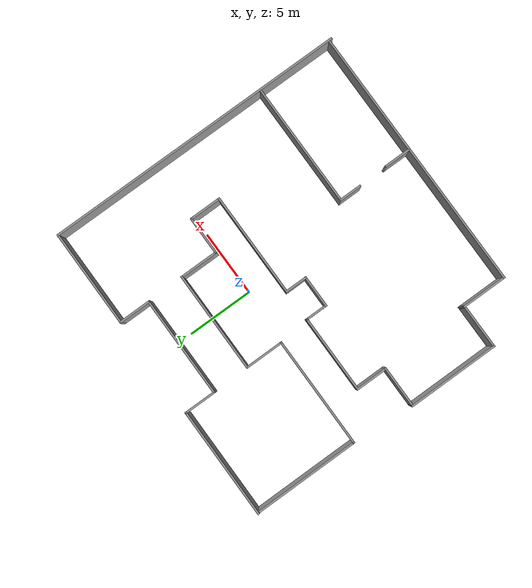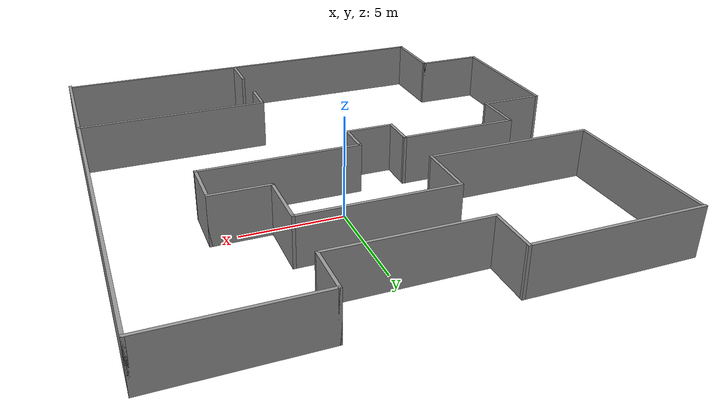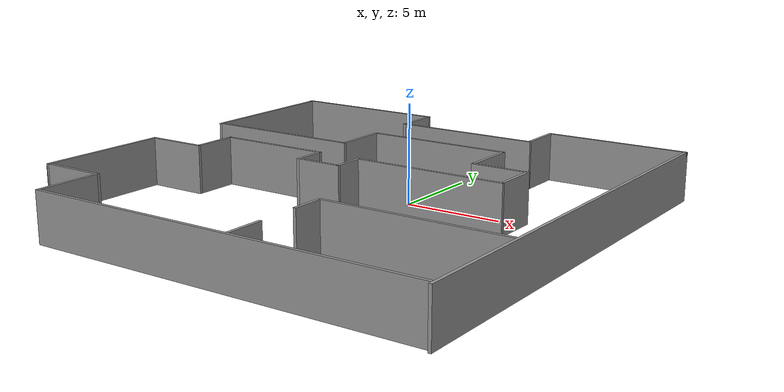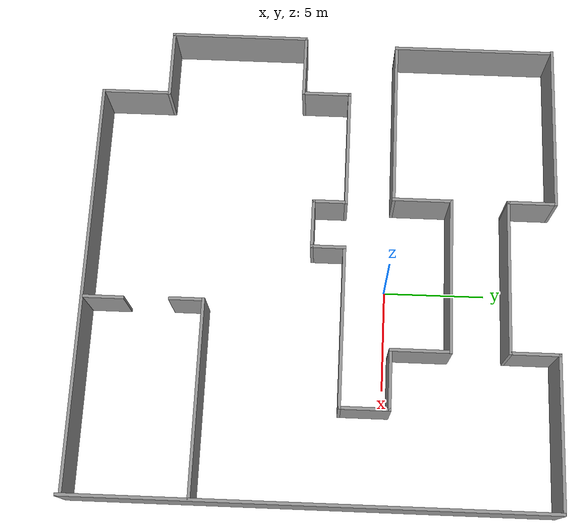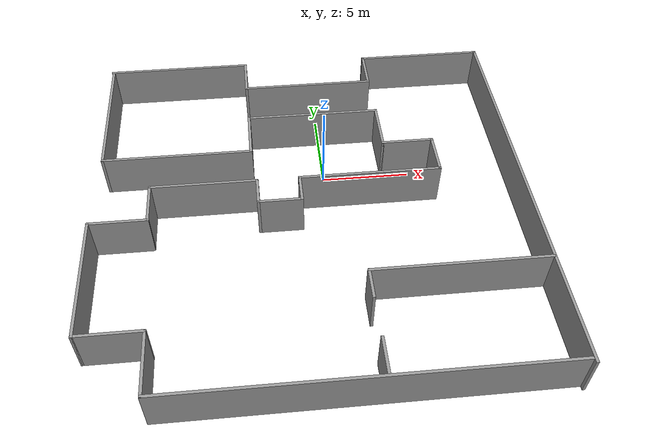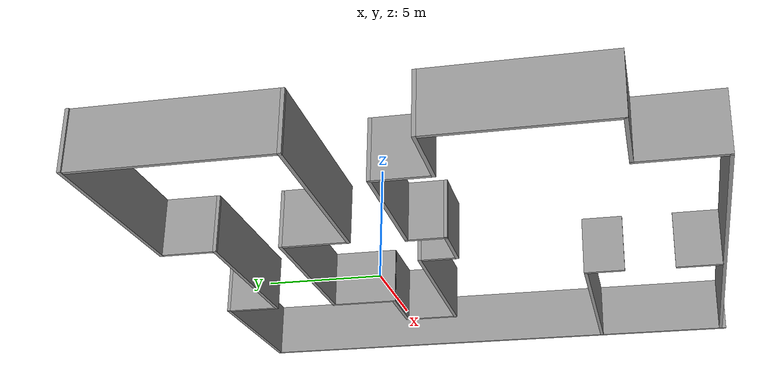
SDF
<?xml version='1.0'?>
<sdf version='1.7'>
  <model name='test1'>
    <pose>-1.06273 -3.27495 0 0 -0 0</pose>
    <link name='Wall_10'>
      <collision name='Wall_10_Collision'>
        <geometry>
          <box>
            <size>3 0.15 2.5</size>
          </box>
        </geometry>
        <pose>0 0 1.25 0 -0 0</pose>
      </collision>
      <visual name='Wall_10_Visual'>
        <pose>0 0 1.25 0 -0 0</pose>
        <geometry>
          <box>
            <size>3 0.15 2.5</size>
          </box>
        </geometry>
        <material>
          <script>
            <uri>file://media/materials/scripts/gazebo.material</uri>
            <name>Gazebo/Grey</name>
          </script>
          <ambient>1 1 1 1</ambient>
        </material>
        <meta>
          <layer>0</layer>
        </meta>
      </visual>
      <pose>4.49826 4.96085 0 0 -0 -1.5708</pose>
    </link>
    <link name='Wall_11'>
      <collision name='Wall_11_Collision'>
        <geometry>
          <box>
            <size>3 0.15 2.5</size>
          </box>
        </geometry>
        <pose>0 0 1.25 0 -0 0</pose>
      </collision>
      <visual name='Wall_11_Visual'>
        <pose>0 0 1.25 0 -0 0</pose>
        <geometry>
          <box>
            <size>3 0.15 2.5</size>
          </box>
        </geometry>
        <material>
          <script>
            <uri>file://media/materials/scripts/gazebo.material</uri>
            <name>Gazebo/Grey</name>
          </script>
          <ambient>1 1 1 1</ambient>
        </material>
        <meta>
          <layer>0</layer>
        </meta>
      </visual>
      <pose>5.92326 3.53585 0 0 -0 0</pose>
    </link>
    <link name='Wall_12'>
      <collision name='Wall_12_Collision'>
        <geometry>
          <box>
            <size>2.5 0.15 2.5</size>
          </box>
        </geometry>
        <pose>0 0 1.25 0 -0 0</pose>
      </collision>
      <visual name='Wall_12_Visual'>
        <pose>0 0 1.25 0 -0 0</pose>
        <geometry>
          <box>
            <size>2.5 0.15 2.5</size>
          </box>
        </geometry>
        <material>
          <script>
            <uri>file://media/materials/scripts/gazebo.material</uri>
            <name>Gazebo/Grey</name>
          </script>
          <ambient>1 1 1 1</ambient>
        </material>
        <meta>
          <layer>0</layer>
        </meta>
      </visual>
      <pose>7.34826 2.36085 0 0 -0 -1.5708</pose>
    </link>
    <link name='Wall_13'>
      <collision name='Wall_13_Collision'>
        <geometry>
          <box>
            <size>8 0.15 2.5</size>
          </box>
        </geometry>
        <pose>0 0 1.25 0 -0 0</pose>
      </collision>
      <visual name='Wall_13_Visual'>
        <pose>0 0 1.25 0 -0 0</pose>
        <geometry>
          <box>
            <size>8 0.15 2.5</size>
          </box>
        </geometry>
        <material>
          <script>
            <uri>file://media/materials/scripts/gazebo.material</uri>
            <name>Gazebo/Grey</name>
          </script>
          <ambient>1 1 1 1</ambient>
        </material>
        <meta>
          <layer>0</layer>
        </meta>
      </visual>
      <pose>3.42326 1.18585 0 0 -0 3.14159</pose>
    </link>
    <link name='Wall_14'>
      <collision name='Wall_14_Collision'>
        <geometry>
          <box>
            <size>1.75 0.15 2.5</size>
          </box>
        </geometry>
        <pose>0 0 1.25 0 -0 0</pose>
      </collision>
      <visual name='Wall_14_Visual'>
        <pose>0 0 1.25 0 -0 0</pose>
        <geometry>
          <box>
            <size>1.75 0.15 2.5</size>
          </box>
        </geometry>
        <material>
          <script>
            <uri>file://media/materials/scripts/gazebo.material</uri>
            <name>Gazebo/Grey</name>
          </script>
          <ambient>1 1 1 1</ambient>
        </material>
        <meta>
          <layer>0</layer>
        </meta>
      </visual>
      <pose>-0.501739 0.385846 0 0 -0 -1.5708</pose>
    </link>
    <link name='Wall_15'>
      <collision name='Wall_15_Collision'>
        <geometry>
          <box>
            <size>2.5 0.15 2.5</size>
          </box>
        </geometry>
        <pose>0 0 1.25 0 -0 0</pose>
      </collision>
      <visual name='Wall_15_Visual'>
        <pose>0 0 1.25 0 -0 0</pose>
        <geometry>
          <box>
            <size>2.5 0.15 2.5</size>
          </box>
        </geometry>
        <material>
          <script>
            <uri>file://media/materials/scripts/gazebo.material</uri>
            <name>Gazebo/Grey</name>
          </script>
          <ambient>1 1 1 1</ambient>
        </material>
        <meta>
          <layer>0</layer>
        </meta>
      </visual>
      <pose>-1.67674 -0.414155 0 0 -0 3.14159</pose>
    </link>
    <link name='Wall_16'>
      <collision name='Wall_16_Collision'>
        <geometry>
          <box>
            <size>1.75 0.15 2.5</size>
          </box>
        </geometry>
        <pose>0 0 1.25 0 -0 0</pose>
      </collision>
      <visual name='Wall_16_Visual'>
        <pose>0 0 1.25 0 -0 0</pose>
        <geometry>
          <box>
            <size>1.75 0.15 2.5</size>
          </box>
        </geometry>
        <material>
          <script>
            <uri>file://media/materials/scripts/gazebo.material</uri>
            <name>Gazebo/Grey</name>
          </script>
          <ambient>1 1 1 1</ambient>
        </material>
        <meta>
          <layer>0</layer>
        </meta>
      </visual>
      <pose>-2.85174 0.385846 0 0 -0 1.5708</pose>
    </link>
    <link name='Wall_17'>
      <collision name='Wall_17_Collision'>
        <geometry>
          <box>
            <size>6 0.15 2.5</size>
          </box>
        </geometry>
        <pose>0 0 1.25 0 -0 0</pose>
      </collision>
      <visual name='Wall_17_Visual'>
        <pose>0 0 1.25 0 -0 0</pose>
        <geometry>
          <box>
            <size>6 0.15 2.5</size>
          </box>
        </geometry>
        <material>
          <script>
            <uri>file://media/materials/scripts/gazebo.material</uri>
            <name>Gazebo/Grey</name>
          </script>
          <ambient>1 1 1 1</ambient>
        </material>
        <meta>
          <layer>0</layer>
        </meta>
      </visual>
      <pose>-5.77674 1.18585 0 0 -0 3.14159</pose>
    </link>
    <link name='Wall_18'>
      <collision name='Wall_18_Collision'>
        <geometry>
          <box>
            <size>2.5 0.15 2.5</size>
          </box>
        </geometry>
        <pose>0 0 1.25 0 -0 0</pose>
      </collision>
      <visual name='Wall_18_Visual'>
        <pose>0 0 1.25 0 -0 0</pose>
        <geometry>
          <box>
            <size>2.5 0.15 2.5</size>
          </box>
        </geometry>
        <material>
          <script>
            <uri>file://media/materials/scripts/gazebo.material</uri>
            <name>Gazebo/Grey</name>
          </script>
          <ambient>1 1 1 1</ambient>
        </material>
        <meta>
          <layer>0</layer>
        </meta>
      </visual>
      <pose>-8.70174 0.010846 0 0 -0 -1.5708</pose>
    </link>
    <link name='Wall_19'>
      <collision name='Wall_19_Collision'>
        <geometry>
          <box>
            <size>3.25 0.15 2.5</size>
          </box>
        </geometry>
        <pose>0 0 1.25 0 -0 0</pose>
      </collision>
      <visual name='Wall_19_Visual'>
        <pose>0 0 1.25 0 -0 0</pose>
        <geometry>
          <box>
            <size>3.25 0.15 2.5</size>
          </box>
        </geometry>
        <material>
          <script>
            <uri>file://media/materials/scripts/gazebo.material</uri>
            <name>Gazebo/Grey</name>
          </script>
          <ambient>1 1 1 1</ambient>
        </material>
        <meta>
          <layer>0</layer>
        </meta>
      </visual>
      <pose>-10.2517 -1.16416 0 0 -0 3.14159</pose>
    </link>
    <link name='Wall_20'>
      <collision name='Wall_20_Collision'>
        <geometry>
          <box>
            <size>7 0.15 2.5</size>
          </box>
        </geometry>
        <pose>0 0 1.25 0 -0 0</pose>
      </collision>
      <visual name='Wall_20_Visual'>
        <pose>0 0 1.25 0 -0 0</pose>
        <geometry>
          <box>
            <size>7 0.15 2.5</size>
          </box>
        </geometry>
        <material>
          <script>
            <uri>file://media/materials/scripts/gazebo.material</uri>
            <name>Gazebo/Grey</name>
          </script>
          <ambient>1 1 1 1</ambient>
        </material>
        <meta>
          <layer>0</layer>
        </meta>
      </visual>
      <pose>-11.8017 -4.58915 0 0 -0 -1.5708</pose>
    </link>
    <link name='Wall_21'>
      <collision name='Wall_21_Collision'>
        <geometry>
          <box>
            <size>3.5 0.15 2.5</size>
          </box>
        </geometry>
        <pose>0 0 1.25 0 -0 0</pose>
      </collision>
      <visual name='Wall_21_Visual'>
        <pose>0 0 1.25 0 -0 0</pose>
        <geometry>
          <box>
            <size>3.5 0.15 2.5</size>
          </box>
        </geometry>
        <material>
          <script>
            <uri>file://media/materials/scripts/gazebo.material</uri>
            <name>Gazebo/Grey</name>
          </script>
          <ambient>1 1 1 1</ambient>
        </material>
        <meta>
          <layer>0</layer>
        </meta>
      </visual>
      <pose>-10.1267 -8.01415 0 0 -0 0</pose>
    </link>
    <link name='Wall_22'>
      <collision name='Wall_22_Collision'>
        <geometry>
          <box>
            <size>3.5 0.15 2.5</size>
          </box>
        </geometry>
        <pose>0 0 1.25 0 -0 0</pose>
      </collision>
      <visual name='Wall_22_Visual'>
        <pose>0 0 1.25 0 -0 0</pose>
        <geometry>
          <box>
            <size>3.5 0.15 2.5</size>
          </box>
        </geometry>
        <material>
          <script>
            <uri>file://media/materials/scripts/gazebo.material</uri>
            <name>Gazebo/Grey</name>
          </script>
          <ambient>1 1 1 1</ambient>
        </material>
        <meta>
          <layer>0</layer>
        </meta>
      </visual>
      <pose>-8.45174 -9.68915 0 0 -0 -1.5708</pose>
    </link>
    <link name='Wall_23'>
      <collision name='Wall_23_Collision'>
        <geometry>
          <box>
            <size>20.25 0.15 2.5</size>
          </box>
        </geometry>
        <pose>0 0 1.25 0 -0 0</pose>
      </collision>
      <visual name='Wall_23_Visual'>
        <pose>0 0 1.25 0 -0 0</pose>
        <geometry>
          <box>
            <size>20.25 0.15 2.5</size>
          </box>
        </geometry>
        <material>
          <script>
            <uri>file://media/materials/scripts/gazebo.material</uri>
            <name>Gazebo/Grey</name>
          </script>
          <ambient>1 1 1 1</ambient>
        </material>
        <meta>
          <layer>0</layer>
        </meta>
      </visual>
      <pose>1.59826 -11.3642 0 0 -0 0</pose>
    </link>
    <link name='Wall_25'>
      <collision name='Wall_25_Collision'>
        <geometry>
          <box>
            <size>9.5 0.15 2.5</size>
          </box>
        </geometry>
        <pose>0 0 1.25 0 -0 0</pose>
      </collision>
      <visual name='Wall_25_Visual'>
        <pose>0 0 1.25 0 -0 0</pose>
        <geometry>
          <box>
            <size>9.5 0.15 2.5</size>
          </box>
        </geometry>
        <material>
          <script>
            <uri>file://media/materials/scripts/gazebo.material</uri>
            <name>Gazebo/Grey</name>
          </script>
          <ambient>1 1 1 1</ambient>
        </material>
        <meta>
          <layer>0</layer>
        </meta>
      </visual>
      <pose>7.06245 -5.50558 0 0 -0 3.14159</pose>
    </link>
    <link name='Wall_26'>
      <collision name='Wall_26_Collision'>
        <geometry>
          <box>
            <size>1.75 0.15 2.5</size>
          </box>
        </geometry>
        <pose>0 0 1.25 0 -0 0</pose>
      </collision>
      <visual name='Wall_26_Visual'>
        <pose>0 0 1.25 0 -0 0</pose>
        <geometry>
          <box>
            <size>1.75 0.15 2.5</size>
          </box>
        </geometry>
        <material>
          <script>
            <uri>file://media/materials/scripts/gazebo.material</uri>
            <name>Gazebo/Grey</name>
          </script>
          <ambient>1 1 1 1</ambient>
        </material>
        <meta>
          <layer>0</layer>
        </meta>
      </visual>
      <pose>2.38744 -6.30558 0 0 -0 -1.5708</pose>
    </link>
    <link name='Wall_29'>
      <collision name='Wall_29_Collision'>
        <geometry>
          <box>
            <size>2 0.15 2.5</size>
          </box>
        </geometry>
        <pose>0 0 1.25 0 -0 0</pose>
      </collision>
      <visual name='Wall_29_Visual'>
        <pose>0 0 1.25 0 -0 0</pose>
        <geometry>
          <box>
            <size>2 0.15 2.5</size>
          </box>
        </geometry>
        <material>
          <script>
            <uri>file://media/materials/scripts/gazebo.material</uri>
            <name>Gazebo/Grey</name>
          </script>
          <ambient>1 1 1 1</ambient>
        </material>
        <meta>
          <layer>0</layer>
        </meta>
      </visual>
      <pose>2.43834 -10.3295 0 0 -0 1.5708</pose>
    </link>
    <link name='Wall_31'>
      <collision name='Wall_31_Collision'>
        <geometry>
          <box>
            <size>7.75 0.15 2.5</size>
          </box>
        </geometry>
        <pose>0 0 1.25 0 -0 0</pose>
      </collision>
      <visual name='Wall_31_Visual'>
        <pose>0 0 1.25 0 -0 0</pose>
        <geometry>
          <box>
            <size>7.75 0.15 2.5</size>
          </box>
        </geometry>
        <material>
          <script>
            <uri>file://media/materials/scripts/gazebo.material</uri>
            <name>Gazebo/Grey</name>
          </script>
          <ambient>1 1 1 1</ambient>
        </material>
        <meta>
          <layer>0</layer>
        </meta>
      </visual>
      <pose>0.698261 6.38585 0 0 -0 3.14159</pose>
    </link>
    <link name='Wall_32'>
      <collision name='Wall_32_Collision'>
        <geometry>
          <box>
            <size>3 0.15 2.5</size>
          </box>
        </geometry>
        <pose>0 0 1.25 0 -0 0</pose>
      </collision>
      <visual name='Wall_32_Visual'>
        <pose>0 0 1.25 0 -0 0</pose>
        <geometry>
          <box>
            <size>3 0.15 2.5</size>
          </box>
        </geometry>
        <material>
          <script>
            <uri>file://media/materials/scripts/gazebo.material</uri>
            <name>Gazebo/Grey</name>
          </script>
          <ambient>1 1 1 1</ambient>
        </material>
        <meta>
          <layer>0</layer>
        </meta>
      </visual>
      <pose>-3.10174 4.96085 0 0 -0 -1.5708</pose>
    </link>
    <link name='Wall_33'>
      <collision name='Wall_33_Collision'>
        <geometry>
          <box>
            <size>8.5 0.15 2.5</size>
          </box>
        </geometry>
        <pose>0 0 1.25 0 -0 0</pose>
      </collision>
      <visual name='Wall_33_Visual'>
        <pose>0 0 1.25 0 -0 0</pose>
        <geometry>
          <box>
            <size>8.5 0.15 2.5</size>
          </box>
        </geometry>
        <material>
          <script>
            <uri>file://media/materials/scripts/gazebo.material</uri>
            <name>Gazebo/Grey</name>
          </script>
          <ambient>1 1 1 1</ambient>
        </material>
        <meta>
          <layer>0</layer>
        </meta>
      </visual>
      <pose>-7.27674 3.53585 0 0 -0 3.14159</pose>
    </link>
    <link name='Wall_34'>
      <collision name='Wall_34_Collision'>
        <geometry>
          <box>
            <size>8 0.15 2.5</size>
          </box>
        </geometry>
        <pose>0 0 1.25 0 -0 0</pose>
      </collision>
      <visual name='Wall_34_Visual'>
        <pose>0 0 1.25 0 -0 0</pose>
        <geometry>
          <box>
            <size>8 0.15 2.5</size>
          </box>
        </geometry>
        <material>
          <script>
            <uri>file://media/materials/scripts/gazebo.material</uri>
            <name>Gazebo/Grey</name>
          </script>
          <ambient>1 1 1 1</ambient>
        </material>
        <meta>
          <layer>0</layer>
        </meta>
      </visual>
      <pose>-11.4517 7.46084 0 0 -0 1.5708</pose>
    </link>
    <link name='Wall_36'>
      <collision name='Wall_36_Collision'>
        <geometry>
          <box>
            <size>7.75 0.15 2.5</size>
          </box>
        </geometry>
        <pose>0 0 1.25 0 -0 0</pose>
      </collision>
      <visual name='Wall_36_Visual'>
        <pose>0 0 1.25 0 -0 0</pose>
        <geometry>
          <box>
            <size>7.75 0.15 2.5</size>
          </box>
        </geometry>
        <material>
          <script>
            <uri>file://media/materials/scripts/gazebo.material</uri>
            <name>Gazebo/Grey</name>
          </script>
          <ambient>1 1 1 1</ambient>
        </material>
        <meta>
          <layer>0</layer>
        </meta>
      </visual>
      <pose>0.651737 9.2 0 0 -0 3.14159</pose>
    </link>
    <link name='Wall_37'>
      <collision name='Wall_37_Collision'>
        <geometry>
          <box>
            <size>2.5 0.15 2.5</size>
          </box>
        </geometry>
        <pose>0 0 1.25 0 -0 0</pose>
      </collision>
      <visual name='Wall_37_Visual'>
        <pose>0 0 1.25 0 -0 0</pose>
        <geometry>
          <box>
            <size>2.5 0.15 2.5</size>
          </box>
        </geometry>
        <material>
          <script>
            <uri>file://media/materials/scripts/gazebo.material</uri>
            <name>Gazebo/Grey</name>
          </script>
          <ambient>1 1 1 1</ambient>
        </material>
        <meta>
          <layer>0</layer>
        </meta>
      </visual>
      <pose>-3.14826 10.375 0 0 -0 1.5708</pose>
    </link>
    <link name='Wall_38'>
      <collision name='Wall_38_Collision'>
        <geometry>
          <box>
            <size>8.5 0.15 2.5</size>
          </box>
        </geometry>
        <pose>0 0 1.25 0 -0 0</pose>
      </collision>
      <visual name='Wall_38_Visual'>
        <pose>0 0 1.25 0 -0 0</pose>
        <geometry>
          <box>
            <size>8.5 0.15 2.5</size>
          </box>
        </geometry>
        <material>
          <script>
            <uri>file://media/materials/scripts/gazebo.material</uri>
            <name>Gazebo/Grey</name>
          </script>
          <ambient>1 1 1 1</ambient>
        </material>
        <meta>
          <layer>0</layer>
        </meta>
      </visual>
      <pose>-7.32326 11.55 0 0 -0 3.14159</pose>
    </link>
    <link name='Wall_4'>
      <collision name='Wall_4_Collision'>
        <geometry>
          <box>
            <size>7.5 0.15 2.5</size>
          </box>
        </geometry>
        <pose>0 0 1.25 0 -0 0</pose>
      </collision>
      <visual name='Wall_4_Visual'>
        <pose>0 0 1.25 0 -0 0</pose>
        <geometry>
          <box>
            <size>7.5 0.15 2.5</size>
          </box>
        </geometry>
        <material>
          <script>
            <uri>file://media/materials/scripts/gazebo.material</uri>
            <name>Gazebo/Grey</name>
          </script>
          <ambient>1 1 1 1</ambient>
        </material>
        <meta>
          <layer>0</layer>
        </meta>
      </visual>
      <pose>8.12674 11.55 0 0 -0 0</pose>
    </link>
    <link name='Wall_5'>
      <collision name='Wall_5_Collision'>
        <geometry>
          <box>
            <size>23.25 0.15 2.5</size>
          </box>
        </geometry>
        <pose>0 0 1.25 0 -0 0</pose>
      </collision>
      <visual name='Wall_5_Visual'>
        <pose>0 0 1.25 0 -0 0</pose>
        <geometry>
          <box>
            <size>23.25 0.15 2.5</size>
          </box>
        </geometry>
        <material>
          <script>
            <uri>file://media/materials/scripts/gazebo.material</uri>
            <name>Gazebo/Grey</name>
          </script>
          <ambient>1 1 1 1</ambient>
        </material>
        <meta>
          <layer>0</layer>
        </meta>
      </visual>
      <pose>11.8017 0 0 0 -0 -1.5708</pose>
    </link>
    <link name='Wall_7'>
      <collision name='Wall_7_Collision'>
        <geometry>
          <box>
            <size>2.5 0.15 2.5</size>
          </box>
        </geometry>
        <pose>0 0 1.25 0 -0 0</pose>
      </collision>
      <visual name='Wall_7_Visual'>
        <pose>0 0 1.25 0 -0 0</pose>
        <geometry>
          <box>
            <size>2.5 0.15 2.5</size>
          </box>
        </geometry>
        <material>
          <script>
            <uri>file://media/materials/scripts/gazebo.material</uri>
            <name>Gazebo/Grey</name>
          </script>
          <ambient>1 1 1 1</ambient>
        </material>
        <meta>
          <layer>0</layer>
        </meta>
      </visual>
      <pose>4.45174 10.375 0 0 -0 -1.5708</pose>
    </link>
    <static>1</static>
  </model>
</sdf>
